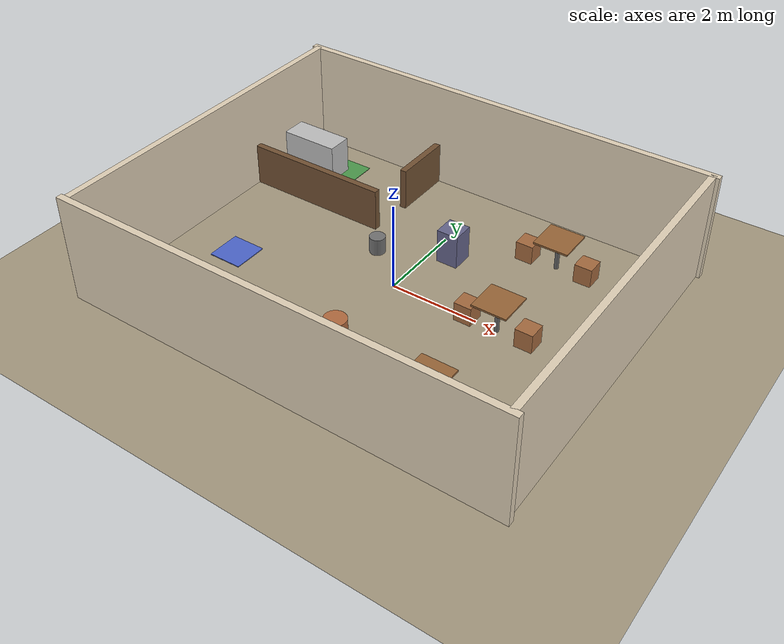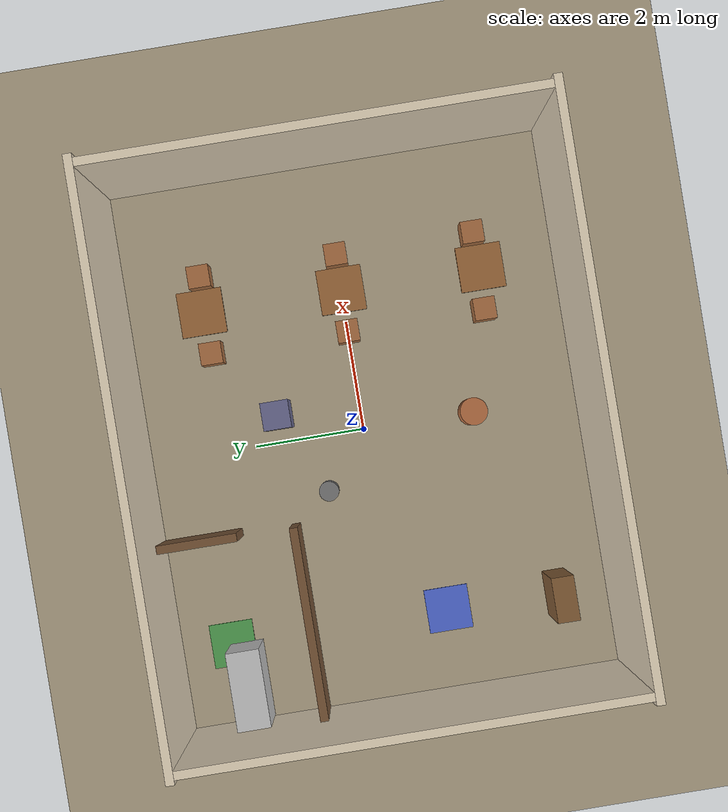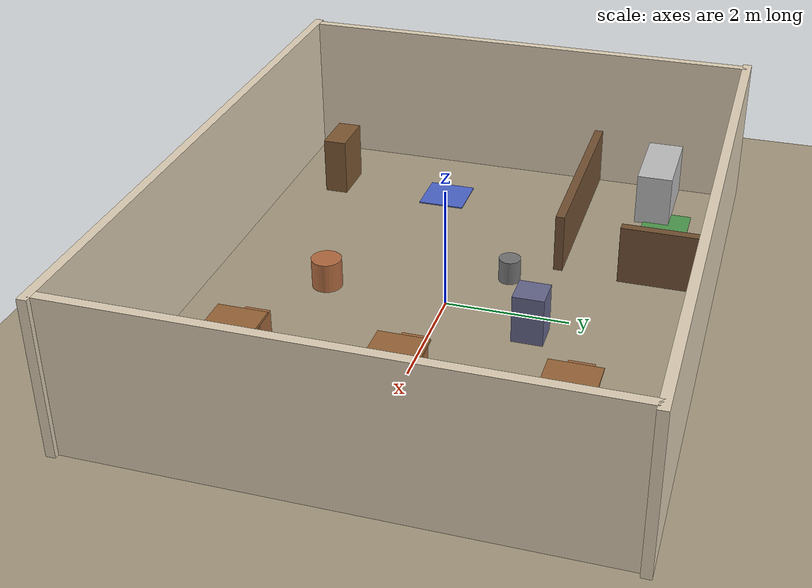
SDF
<?xml version="1.0" ?>
<sdf version="1.9">
  <world name="cafe_world">

    <!-- Physics -->
    <physics name="1ms" type="ignored">
      <max_step_size>0.001</max_step_size>
      <real_time_factor>1.0</real_time_factor>
    </physics>

    <!-- Plugins -->
    <plugin filename="gz-sim-physics-system" name="gz::sim::systems::Physics"/>
    <plugin filename="gz-sim-user-commands-system" name="gz::sim::systems::UserCommands"/>
    <plugin filename="gz-sim-scene-broadcaster-system" name="gz::sim::systems::SceneBroadcaster"/>
    <plugin filename="gz-sim-sensors-system" name="gz::sim::systems::Sensors">
      <render_engine>ogre2</render_engine>
    </plugin>
    <plugin filename="gz-sim-contact-system" name="gz::sim::systems::Contact"/>

    <!-- Warm café lighting -->
    <light type="directional" name="sun">
      <cast_shadows>true</cast_shadows>
      <pose>0 0 10 0 0 0</pose>
      <diffuse>0.95 0.9 0.8 1</diffuse>
      <specular>0.3 0.3 0.3 1</specular>
      <attenuation>
        <range>1000</range>
        <constant>0.9</constant>
        <linear>0.01</linear>
        <quadratic>0.001</quadratic>
      </attenuation>
      <direction>-0.5 0.1 -0.9</direction>
    </light>

    <!-- Ground plane (tiled café floor) -->
    <model name="ground_plane">
      <static>true</static>
      <link name="link">
        <collision name="collision">
          <geometry><plane><normal>0 0 1</normal><size>100 100</size></plane></geometry>
        </collision>
        <visual name="visual">
          <geometry><plane><normal>0 0 1</normal><size>100 100</size></plane></geometry>
          <material>
            <ambient>0.55 0.5 0.4 1</ambient>
            <diffuse>0.65 0.6 0.5 1</diffuse>
          </material>
        </visual>
      </link>
    </model>

    <!-- North wall (full width) -->
    <model name="wall_north">
      <static>true</static>
      <pose>0 4 1.25 0 0 0</pose>
      <link name="link">
        <collision name="c"><geometry><box><size>10.3 0.15 2.5</size></box></geometry></collision>
        <visual name="v"><geometry><box><size>10.3 0.15 2.5</size></box></geometry>
          <material><ambient>0.82 0.76 0.66 1</ambient><diffuse>0.88 0.82 0.72 1</diffuse></material>
        </visual>
      </link>
    </model>

    <!-- South wall (full width) -->
    <model name="wall_south">
      <static>true</static>
      <pose>0 -4 1.25 0 0 0</pose>
      <link name="link">
        <collision name="c"><geometry><box><size>10.3 0.15 2.5</size></box></geometry></collision>
        <visual name="v"><geometry><box><size>10.3 0.15 2.5</size></box></geometry>
          <material><ambient>0.82 0.76 0.66 1</ambient><diffuse>0.88 0.82 0.72 1</diffuse></material>
        </visual>
      </link>
    </model>

    <!-- East wall -->
    <model name="wall_east">
      <static>true</static>
      <pose>5 0 1.25 0 0 0</pose>
      <link name="link">
        <collision name="c"><geometry><box><size>0.15 8 2.5</size></box></geometry></collision>
        <visual name="v"><geometry><box><size>0.15 8 2.5</size></box></geometry>
          <material><ambient>0.82 0.76 0.66 1</ambient><diffuse>0.88 0.82 0.72 1</diffuse></material>
        </visual>
      </link>
    </model>

    <!-- West wall -->
    <model name="wall_west">
      <static>true</static>
      <pose>-5 0 1.25 0 0 0</pose>
      <link name="link">
        <collision name="c"><geometry><box><size>0.15 8 2.5</size></box></geometry></collision>
        <visual name="v"><geometry><box><size>0.15 8 2.5</size></box></geometry>
          <material><ambient>0.82 0.76 0.66 1</ambient><diffuse>0.88 0.82 0.72 1</diffuse></material>
        </visual>
      </link>
    </model>

    <!-- Kitchen south counter wall -->
    <model name="kitchen_wall_south">
      <static>true</static>
      <pose>-3.25 1.5 0.5 0 0 0</pose>
      <link name="link">
        <collision name="c"><geometry><box><size>3.5 0.15 1.0</size></box></geometry></collision>
        <visual name="v"><geometry><box><size>3.5 0.15 1.0</size></box></geometry>
          <material><ambient>0.35 0.25 0.15 1</ambient><diffuse>0.45 0.32 0.2 1</diffuse></material>
        </visual>
      </link>
    </model>

    <!-- Kitchen east counter wall (with gap at bottom for passage) -->
    <model name="kitchen_wall_east">
      <static>true</static>
      <pose>-1.5 3.25 0.5 0 0 0</pose>
      <link name="link">
        <collision name="c"><geometry><box><size>0.15 1.5 1.0</size></box></geometry></collision>
        <visual name="v"><geometry><box><size>0.15 1.5 1.0</size></box></geometry>
          <material><ambient>0.35 0.25 0.15 1</ambient><diffuse>0.45 0.32 0.2 1</diffuse></material>
        </visual>
      </link>
    </model>

    <!-- Kitchen countertop (work surface) -->
    <model name="kitchen_counter">
      <static>true</static>
      <pose>-4.2 2.75 0.45 0 0 0</pose>
      <link name="link">
        <collision name="c"><geometry><box><size>1.4 0.6 0.9</size></box></geometry></collision>
        <visual name="v"><geometry><box><size>1.4 0.6 0.9</size></box></geometry>
          <material><ambient>0.6 0.6 0.6 1</ambient><diffuse>0.75 0.75 0.75 1</diffuse></material>
        </visual>
      </link>
    </model>

    <!-- Kitchen label marker (small box on floor) -->
    <model name="kitchen_marker">
      <static>true</static>
      <pose>-3.5 3.0 0.01 0 0 0</pose>
      <link name="link">
        <visual name="v"><geometry><box><size>0.8 0.8 0.02</size></box></geometry>
          <material><ambient>0.2 0.5 0.2 1</ambient><diffuse>0.3 0.6 0.3 1</diffuse></material>
        </visual>
      </link>
    </model>

    <model name="home_marker">
      <static>true</static>
      <pose>-3.5 -1.0 0.01 0 0 0</pose>
      <link name="link">
        <visual name="v"><geometry><box><size>0.8 0.8 0.02</size></box></geometry>
          <material><ambient>0.2 0.3 0.7 1</ambient><diffuse>0.3 0.4 0.8 1</diffuse></material>
        </visual>
      </link>
    </model>

    <!-- TABLE 1 -->
    <model name="table1_top">
      <static>true</static>
      <pose>2.5 2.5 0.74 0 0 0</pose>
      <link name="link">
        <collision name="c"><geometry><box><size>0.8 0.8 0.04</size></box></geometry></collision>
        <visual name="v"><geometry><box><size>0.8 0.8 0.04</size></box></geometry>
          <material><ambient>0.5 0.33 0.18 1</ambient><diffuse>0.6 0.4 0.22 1</diffuse></material>
        </visual>
      </link>
    </model>
    <model name="table1_leg">
      <static>true</static>
      <pose>2.5 2.5 0.36 0 0 0</pose>
      <link name="link">
        <collision name="c"><geometry><cylinder><radius>0.05</radius><length>0.72</length></cylinder></geometry></collision>
        <visual name="v"><geometry><cylinder><radius>0.05</radius><length>0.72</length></cylinder></geometry>
          <material><ambient>0.3 0.3 0.3 1</ambient><diffuse>0.4 0.4 0.4 1</diffuse></material>
        </visual>
      </link>
    </model>

    <!-- Table 1 chairs (2 chairs) -->
    <model name="table1_chair_a">
      <static>true</static>
      <pose>1.8 2.5 0.22 0 0 0</pose>
      <link name="link">
        <collision name="c"><geometry><box><size>0.4 0.4 0.44</size></box></geometry></collision>
        <visual name="v"><geometry><box><size>0.4 0.4 0.44</size></box></geometry>
          <material><ambient>0.55 0.35 0.2 1</ambient><diffuse>0.65 0.42 0.25 1</diffuse></material>
        </visual>
      </link>
    </model>
    <model name="table1_chair_b">
      <static>true</static>
      <pose>3.2 2.5 0.22 0 0 0</pose>
      <link name="link">
        <collision name="c"><geometry><box><size>0.4 0.4 0.44</size></box></geometry></collision>
        <visual name="v"><geometry><box><size>0.4 0.4 0.44</size></box></geometry>
          <material><ambient>0.55 0.35 0.2 1</ambient><diffuse>0.65 0.42 0.25 1</diffuse></material>
        </visual>
      </link>
    </model>

    <!-- TABLE 2 -->
    <model name="table2_top">
      <static>true</static>
      <pose>2.5 0.0 0.74 0 0 0</pose>
      <link name="link">
        <collision name="c"><geometry><box><size>0.8 0.8 0.04</size></box></geometry></collision>
        <visual name="v"><geometry><box><size>0.8 0.8 0.04</size></box></geometry>
          <material><ambient>0.5 0.33 0.18 1</ambient><diffuse>0.6 0.4 0.22 1</diffuse></material>
        </visual>
      </link>
    </model>
    <model name="table2_leg">
      <static>true</static>
      <pose>2.5 0.0 0.36 0 0 0</pose>
      <link name="link">
        <collision name="c"><geometry><cylinder><radius>0.05</radius><length>0.72</length></cylinder></geometry></collision>
        <visual name="v"><geometry><cylinder><radius>0.05</radius><length>0.72</length></cylinder></geometry>
          <material><ambient>0.3 0.3 0.3 1</ambient><diffuse>0.4 0.4 0.4 1</diffuse></material>
        </visual>
      </link>
    </model>

    <!-- Table 2 chairs -->
    <model name="table2_chair_a">
      <static>true</static>
      <pose>1.8 0.0 0.22 0 0 0</pose>
      <link name="link">
        <collision name="c"><geometry><box><size>0.4 0.4 0.44</size></box></geometry></collision>
        <visual name="v"><geometry><box><size>0.4 0.4 0.44</size></box></geometry>
          <material><ambient>0.55 0.35 0.2 1</ambient><diffuse>0.65 0.42 0.25 1</diffuse></material>
        </visual>
      </link>
    </model>
    <model name="table2_chair_b">
      <static>true</static>
      <pose>3.2 0.0 0.22 0 0 0</pose>
      <link name="link">
        <collision name="c"><geometry><box><size>0.4 0.4 0.44</size></box></geometry></collision>
        <visual name="v"><geometry><box><size>0.4 0.4 0.44</size></box></geometry>
          <material><ambient>0.55 0.35 0.2 1</ambient><diffuse>0.65 0.42 0.25 1</diffuse></material>
        </visual>
      </link>
    </model>

    <!-- TABLE 3 -->
    <model name="table3_top">
      <static>true</static>
      <pose>2.5 -2.5 0.74 0 0 0</pose>
      <link name="link">
        <collision name="c"><geometry><box><size>0.8 0.8 0.04</size></box></geometry></collision>
        <visual name="v"><geometry><box><size>0.8 0.8 0.04</size></box></geometry>
          <material><ambient>0.5 0.33 0.18 1</ambient><diffuse>0.6 0.4 0.22 1</diffuse></material>
        </visual>
      </link>
    </model>
    <model name="table3_leg">
      <static>true</static>
      <pose>2.5 -2.5 0.36 0 0 0</pose>
      <link name="link">
        <collision name="c"><geometry><cylinder><radius>0.05</radius><length>0.72</length></cylinder></geometry></collision>
        <visual name="v"><geometry><cylinder><radius>0.05</radius><length>0.72</length></cylinder></geometry>
          <material><ambient>0.3 0.3 0.3 1</ambient><diffuse>0.4 0.4 0.4 1</diffuse></material>
        </visual>
      </link>
    </model>

    <!-- Table 3 chairs -->
    <model name="table3_chair_a">
      <static>true</static>
      <pose>1.8 -2.5 0.22 0 0 0</pose>
      <link name="link">
        <collision name="c"><geometry><box><size>0.4 0.4 0.44</size></box></geometry></collision>
        <visual name="v"><geometry><box><size>0.4 0.4 0.44</size></box></geometry>
          <material><ambient>0.55 0.35 0.2 1</ambient><diffuse>0.65 0.42 0.25 1</diffuse></material>
        </visual>
      </link>
    </model>
    <model name="table3_chair_b">
      <static>true</static>
      <pose>3.2 -2.5 0.22 0 0 0</pose>
      <link name="link">
        <collision name="c"><geometry><box><size>0.4 0.4 0.44</size></box></geometry></collision>
        <visual name="v"><geometry><box><size>0.4 0.4 0.44</size></box></geometry>
          <material><ambient>0.55 0.35 0.2 1</ambient><diffuse>0.65 0.42 0.25 1</diffuse></material>
        </visual>
      </link>
    </model>

    <!-- ═══════════════════════════════════════════════════════════
         OBSTACLES — scattered objects the robot must avoid
         ═══════════════════════════════════════════════════════════ -->

    <!-- Shelf / bookcase — left side corridor -->
    <model name="obstacle_shelf">
      <static>true</static>
      <pose>-3.5 -3.0 0.5 0 0 0</pose>
      <link name="link">
        <collision name="c"><geometry><box><size>0.8 0.4 1.0</size></box></geometry></collision>
        <visual name="v"><geometry><box><size>0.8 0.4 1.0</size></box></geometry>
          <material><ambient>0.4 0.28 0.15 1</ambient><diffuse>0.5 0.35 0.2 1</diffuse></material>
        </visual>
      </link>
    </model>

    <!-- Planter pot — center corridor -->
    <model name="obstacle_planter">
      <static>true</static>
      <pose>0.0 -2.0 0.25 0 0 0</pose>
      <link name="link">
        <collision name="c"><geometry><cylinder><radius>0.25</radius><length>0.5</length></cylinder></geometry></collision>
        <visual name="v"><geometry><cylinder><radius>0.25</radius><length>0.5</length></cylinder></geometry>
          <material><ambient>0.6 0.35 0.2 1</ambient><diffuse>0.7 0.42 0.25 1</diffuse></material>
        </visual>
      </link>
    </model>

    <!-- Trash bin — near kitchen entrance -->
    <model name="obstacle_bin">
      <static>true</static>
      <pose>-1.0 0.8 0.2 0 0 0</pose>
      <link name="link">
        <collision name="c"><geometry><cylinder><radius>0.18</radius><length>0.4</length></cylinder></geometry></collision>
        <visual name="v"><geometry><cylinder><radius>0.18</radius><length>0.4</length></cylinder></geometry>
          <material><ambient>0.35 0.35 0.35 1</ambient><diffuse>0.45 0.45 0.45 1</diffuse></material>
        </visual>
      </link>
    </model>

    <!-- Display stand — center area -->
    <model name="obstacle_stand">
      <static>true</static>
      <pose>0.5 1.5 0.4 0 0 0</pose>
      <link name="link">
        <collision name="c"><geometry><box><size>0.5 0.5 0.8</size></box></geometry></collision>
        <visual name="v"><geometry><box><size>0.5 0.5 0.8</size></box></geometry>
          <material><ambient>0.3 0.3 0.45 1</ambient><diffuse>0.4 0.4 0.55 1</diffuse></material>
        </visual>
      </link>
    </model>

  </world>
</sdf>
